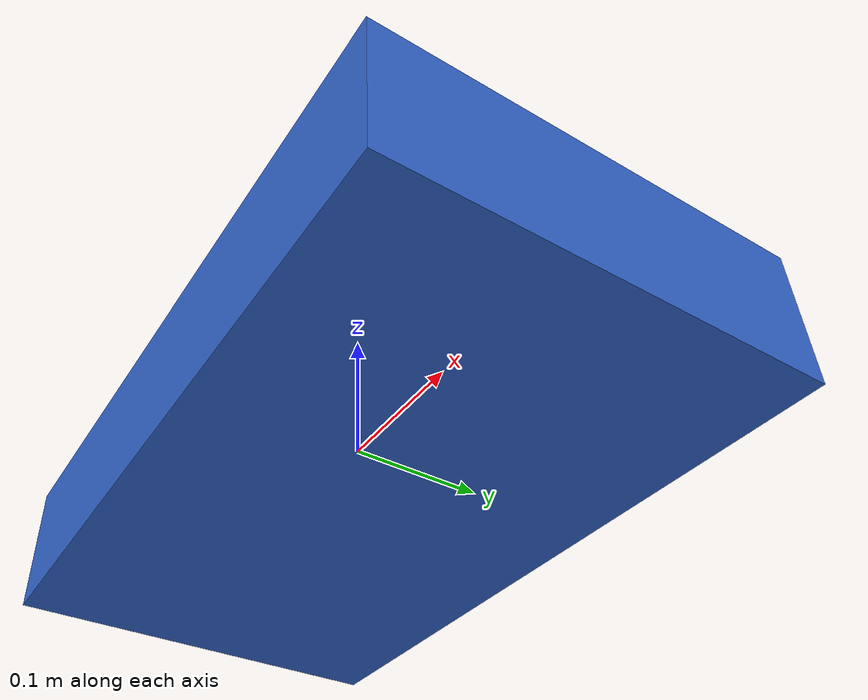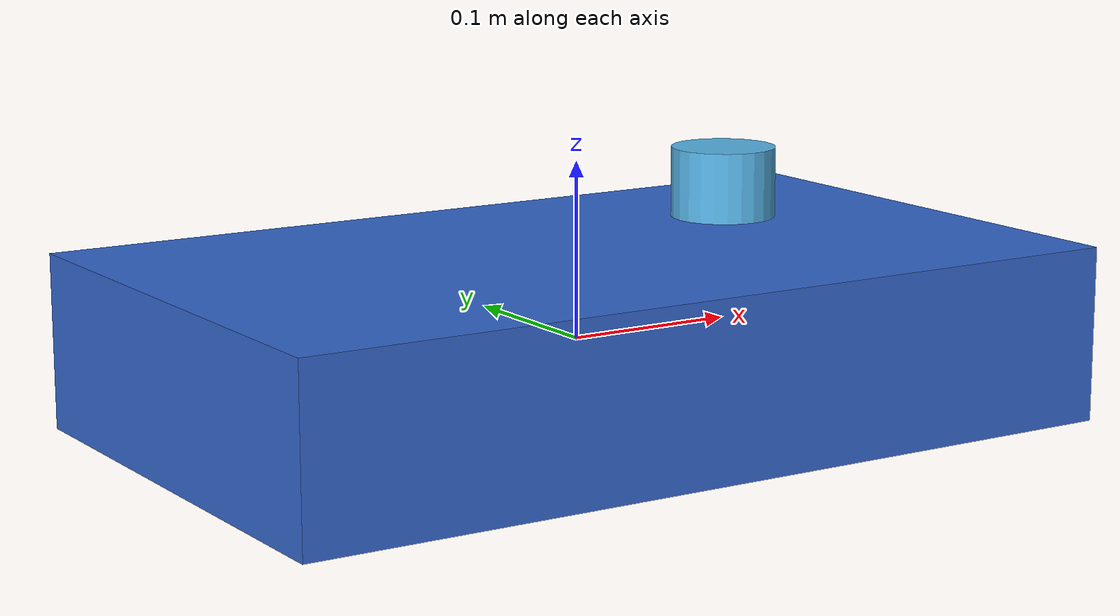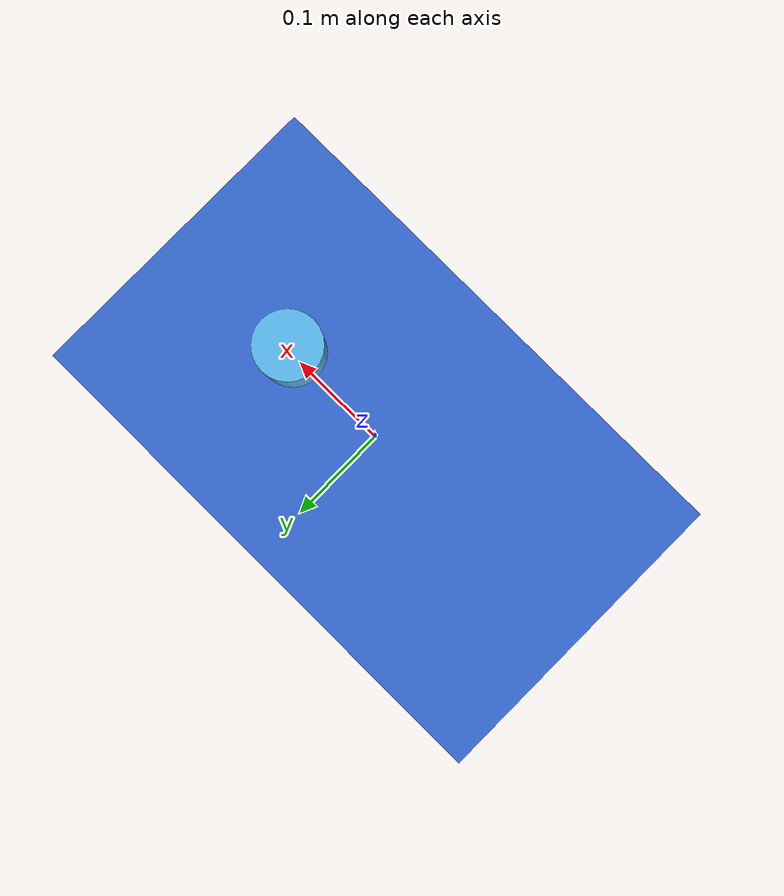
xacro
<?xml version="1.0"?>
<robot xmlns:xacro="http://www.ros.org/wiki/xacro" name="f1tenth_raceline">
  <!-- F1TENTH-scale ackermann RC car for Gazebo Harmonic -->
  <xacro:property name="wheelbase" value="0.32"/>
  <xacro:property name="track_width" value="0.26"/>
  <xacro:property name="wheel_radius" value="0.05"/>

  <link name="base_link">
    <visual>
      <geometry><box size="0.50 0.30 0.10"/></geometry>
      <material name="blue"><color rgba="0.2 0.4 0.8 1"/></material>
    </visual>
    <collision>
      <geometry><box size="0.50 0.30 0.10"/></geometry>
    </collision>
    <inertial>
      <mass value="3.5"/>
      <inertia ixx="0.02" ixy="0" ixz="0" iyy="0.04" iyz="0" izz="0.04"/>
    </inertial>
  </link>

  <link name="laser_link">
    <visual>
      <geometry><cylinder radius="0.03" length="0.04"/></geometry>
    </visual>
    <collision>
      <geometry><cylinder radius="0.03" length="0.04"/></geometry>
    </collision>
  </link>
  <joint name="laser_joint" type="fixed">
    <parent link="base_link"/>
    <child link="laser_link"/>
    <origin xyz="0.10 0 0.08" rpy="0 0 0"/>
  </joint>

  <!-- Wheel macros omitted for brevity; attach gz-sim ackermann plugin in launch -->
</robot>
